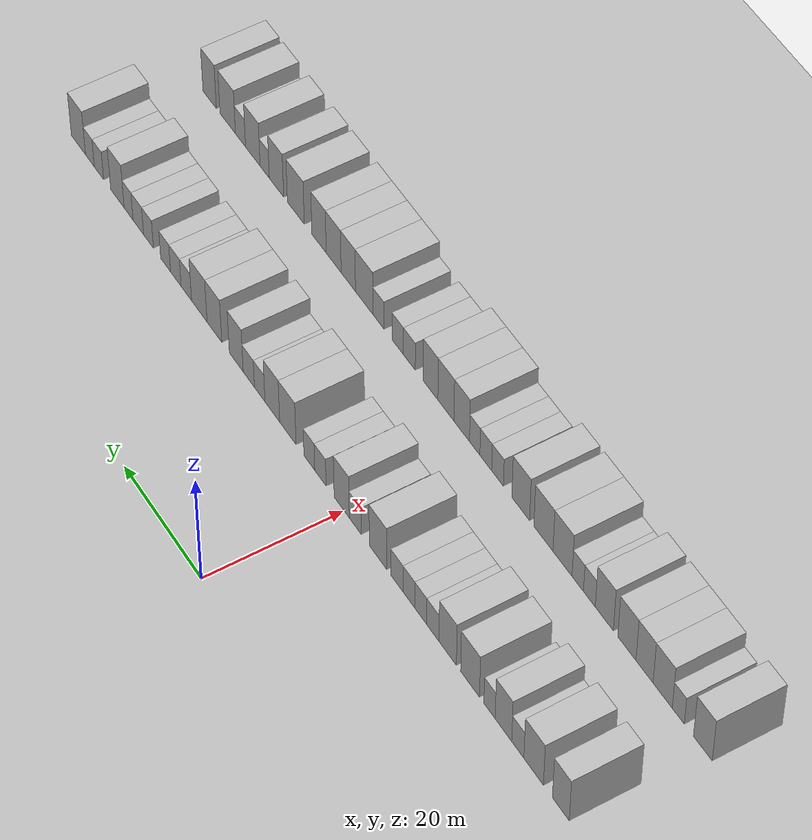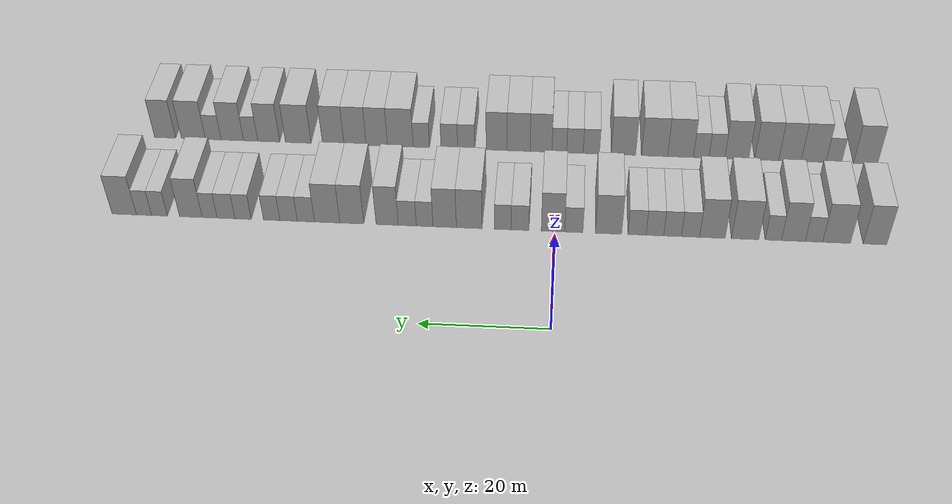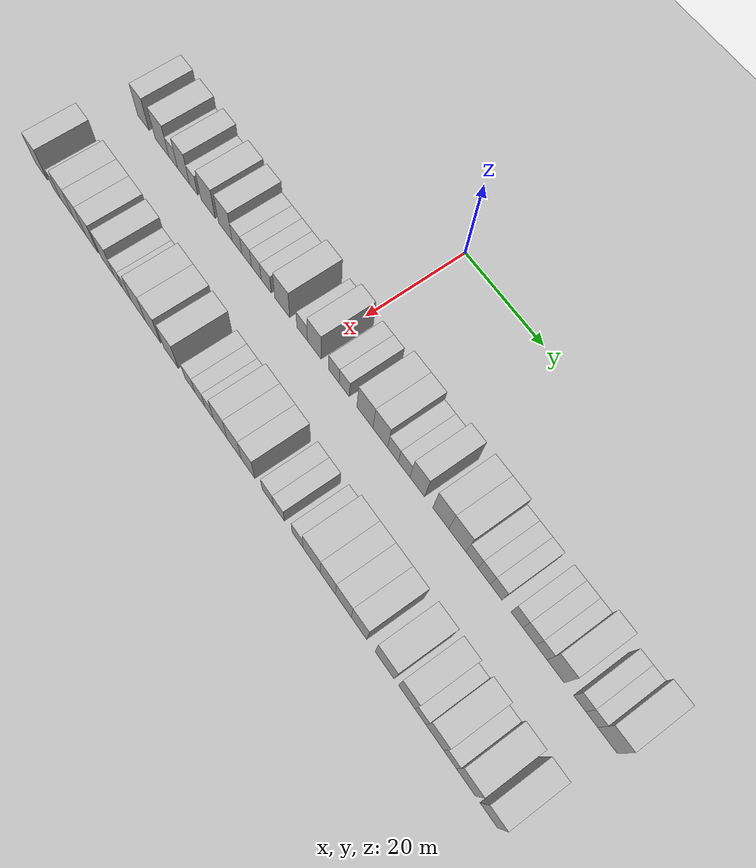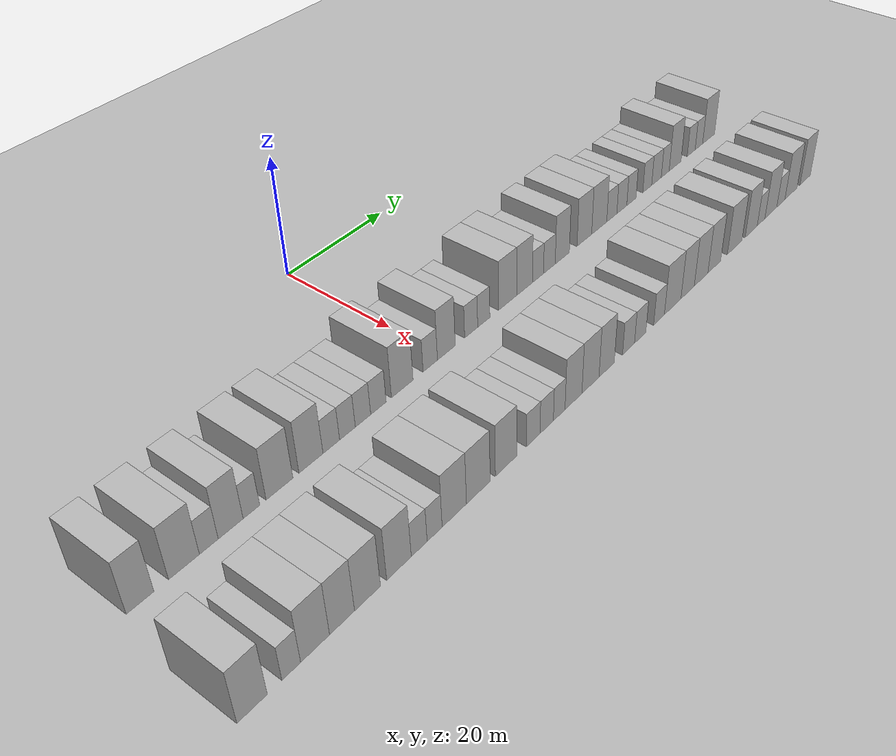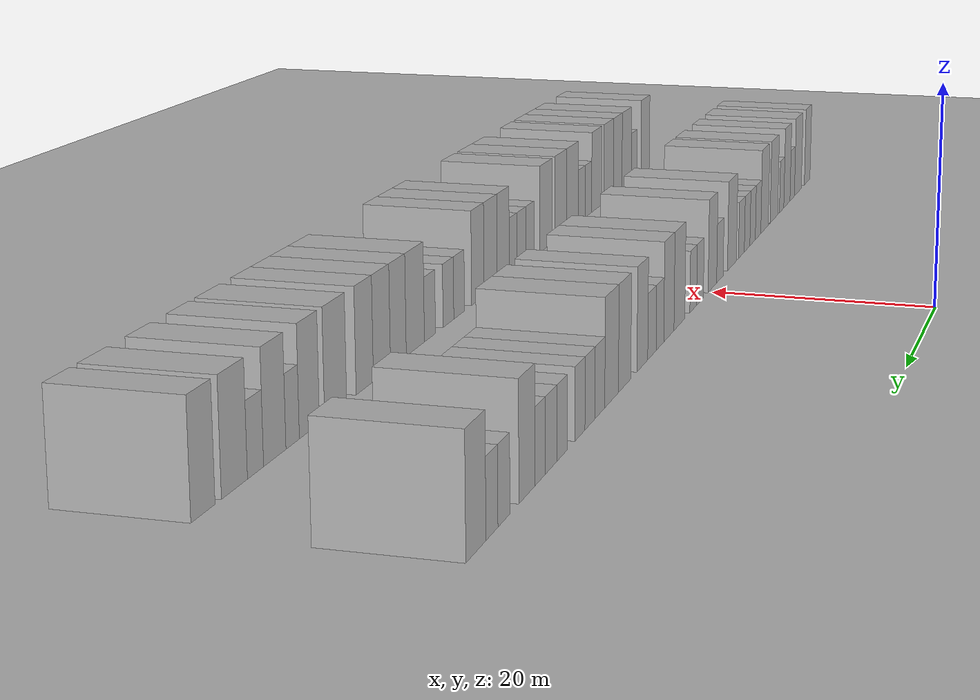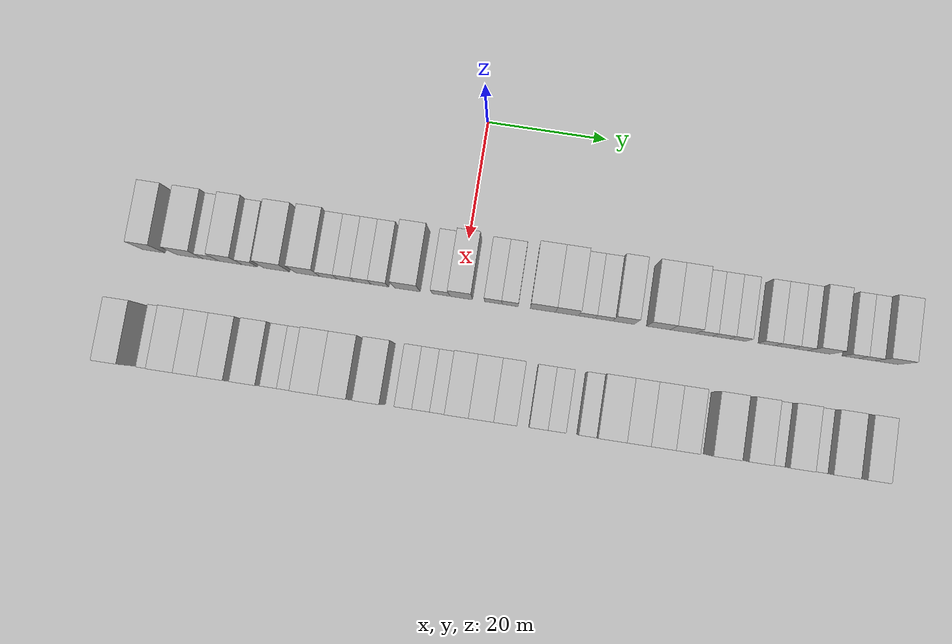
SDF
<sdf version="1.6">
 <world name="default">
  <include><name>ground_plane_1</name><uri>model://HANNAS_ground_plane</uri></include>
  <include>
   <name>ground_plane_2</name>
   <uri>model://HANNAS_ground_plane</uri>
   <pose>100 0 0  0 0 0</pose>
  </include>
  <model name="building_29">
   <static>1</static>
   <pose>25.0000 -50.9365 0 0.000000 0.000000 0.000000</pose>
   <link name="link">
    <pose>0 0 4.50 0 0 0</pose>
    <collision name="collision"><geometry><box><size>10.0000 3.7242 9.0000</size></box></geometry></collision>
    <visual name="visual">
     <cast_shadows>0</cast_shadows>
     <geometry><box><size>10.0000 3.7242 9.0000</size></box></geometry>
     <material>
      <script>
       <uri>model://HANNAS_wall/materials/scripts</uri>
       <uri>model://HANNAS_wall/materials/textures</uri>
       <name>vrc/HANNAS_wall</name>
      </script>
     </material>
    </visual>
   </link>
  </model>
  <model name="building_30">
   <static>1</static>
   <pose>25.0000 -44.8834 0 0.000000 0.000000 0.000000</pose>
   <link name="link">
    <pose>0 0 4.50 0 0 0</pose>
    <collision name="collision"><geometry><box><size>10.0000 4.3821 9.0000</size></box></geometry></collision>
    <visual name="visual">
     <cast_shadows>0</cast_shadows>
     <geometry><box><size>10.0000 4.3821 9.0000</size></box></geometry>
     <material>
      <script>
       <uri>model://HANNAS_wall/materials/scripts</uri>
       <uri>model://HANNAS_wall/materials/textures</uri>
       <name>vrc/HANNAS_wall</name>
      </script>
     </material>
    </visual>
   </link>
  </model>
  <model name="building_31">
   <static>1</static>
   <pose>25.0000 -41.3142 0 0.000000 0.000000 0.000000</pose>
   <link name="link">
    <pose>0 0 3.00 0 0 0</pose>
    <collision name="collision"><geometry><box><size>10.0000 2.7561 6.0000</size></box></geometry></collision>
    <visual name="visual">
     <cast_shadows>0</cast_shadows>
     <geometry><box><size>10.0000 2.7561 6.0000</size></box></geometry>
     <material>
      <script>
       <uri>model://HANNAS_wall/materials/scripts</uri>
       <uri>model://HANNAS_wall/materials/textures</uri>
       <name>vrc/HANNAS_wall</name>
      </script>
     </material>
    </visual>
   </link>
  </model>
  <model name="building_32">
   <static>1</static>
   <pose>25.0000 -38.0559 0 0.000000 0.000000 0.000000</pose>
   <link name="link">
    <pose>0 0 4.50 0 0 0</pose>
    <collision name="collision"><geometry><box><size>10.0000 3.7605 9.0000</size></box></geometry></collision>
    <visual name="visual">
     <cast_shadows>0</cast_shadows>
     <geometry><box><size>10.0000 3.7605 9.0000</size></box></geometry>
     <material>
      <script>
       <uri>model://HANNAS_wall/materials/scripts</uri>
       <uri>model://HANNAS_wall/materials/textures</uri>
       <name>vrc/HANNAS_wall</name>
      </script>
     </material>
    </visual>
   </link>
  </model>
  <model name="building_33">
   <static>1</static>
   <pose>25.0000 -34.8856 0 0.000000 0.000000 0.000000</pose>
   <link name="link">
    <pose>0 0 3.00 0 0 0</pose>
    <collision name="collision"><geometry><box><size>10.0000 2.5803 6.0000</size></box></geometry></collision>
    <visual name="visual">
     <cast_shadows>0</cast_shadows>
     <geometry><box><size>10.0000 2.5803 6.0000</size></box></geometry>
     <material>
      <script>
       <uri>model://HANNAS_wall/materials/scripts</uri>
       <uri>model://HANNAS_wall/materials/textures</uri>
       <name>vrc/HANNAS_wall</name>
      </script>
     </material>
    </visual>
   </link>
  </model>
  <model name="building_34">
   <static>1</static>
   <pose>25.0000 -30.4184 0 0.000000 0.000000 0.000000</pose>
   <link name="link">
    <pose>0 0 4.50 0 0 0</pose>
    <collision name="collision"><geometry><box><size>10.0000 4.3540 9.0000</size></box></geometry></collision>
    <visual name="visual">
     <cast_shadows>0</cast_shadows>
     <geometry><box><size>10.0000 4.3540 9.0000</size></box></geometry>
     <material>
      <script>
       <uri>model://HANNAS_wall/materials/scripts</uri>
       <uri>model://HANNAS_wall/materials/textures</uri>
       <name>vrc/HANNAS_wall</name>
      </script>
     </material>
    </visual>
   </link>
  </model>
  <model name="building_35">
   <static>1</static>
   <pose>25.0000 -25.2072 0 0.000000 0.000000 0.000000</pose>
   <link name="link">
    <pose>0 0 4.50 0 0 0</pose>
    <collision name="collision"><geometry><box><size>10.0000 4.0686 9.0000</size></box></geometry></collision>
    <visual name="visual">
     <cast_shadows>0</cast_shadows>
     <geometry><box><size>10.0000 4.0686 9.0000</size></box></geometry>
     <material>
      <script>
       <uri>model://HANNAS_wall/materials/scripts</uri>
       <uri>model://HANNAS_wall/materials/textures</uri>
       <name>vrc/HANNAS_wall</name>
      </script>
     </material>
    </visual>
   </link>
  </model>
  <model name="building_36">
   <static>1</static>
   <pose>25.0000 -21.7188 0 0.000000 0.000000 0.000000</pose>
   <link name="link">
    <pose>0 0 3.00 0 0 0</pose>
    <collision name="collision"><geometry><box><size>10.0000 2.9082 6.0000</size></box></geometry></collision>
    <visual name="visual">
     <cast_shadows>0</cast_shadows>
     <geometry><box><size>10.0000 2.9082 6.0000</size></box></geometry>
     <material>
      <script>
       <uri>model://HANNAS_wall/materials/scripts</uri>
       <uri>model://HANNAS_wall/materials/textures</uri>
       <name>vrc/HANNAS_wall</name>
      </script>
     </material>
    </visual>
   </link>
  </model>
  <model name="building_37">
   <static>1</static>
   <pose>25.0000 -18.8592 0 0.000000 0.000000 0.000000</pose>
   <link name="link">
    <pose>0 0 3.00 0 0 0</pose>
    <collision name="collision"><geometry><box><size>10.0000 2.8110 6.0000</size></box></geometry></collision>
    <visual name="visual">
     <cast_shadows>0</cast_shadows>
     <geometry><box><size>10.0000 2.8110 6.0000</size></box></geometry>
     <material>
      <script>
       <uri>model://HANNAS_wall/materials/scripts</uri>
       <uri>model://HANNAS_wall/materials/textures</uri>
       <name>vrc/HANNAS_wall</name>
      </script>
     </material>
    </visual>
   </link>
  </model>
  <model name="building_38">
   <static>1</static>
   <pose>25.0000 -16.0442 0 0.000000 0.000000 0.000000</pose>
   <link name="link">
    <pose>0 0 3.00 0 0 0</pose>
    <collision name="collision"><geometry><box><size>10.0000 2.8189 6.0000</size></box></geometry></collision>
    <visual name="visual">
     <cast_shadows>0</cast_shadows>
     <geometry><box><size>10.0000 2.8189 6.0000</size></box></geometry>
     <material>
      <script>
       <uri>model://HANNAS_wall/materials/scripts</uri>
       <uri>model://HANNAS_wall/materials/textures</uri>
       <name>vrc/HANNAS_wall</name>
      </script>
     </material>
    </visual>
   </link>
  </model>
  <model name="building_39">
   <static>1</static>
   <pose>25.0000 -13.1848 0 0.000000 0.000000 0.000000</pose>
   <link name="link">
    <pose>0 0 3.00 0 0 0</pose>
    <collision name="collision"><geometry><box><size>10.0000 2.9000 6.0000</size></box></geometry></collision>
    <visual name="visual">
     <cast_shadows>0</cast_shadows>
     <geometry><box><size>10.0000 2.9000 6.0000</size></box></geometry>
     <material>
      <script>
       <uri>model://HANNAS_wall/materials/scripts</uri>
       <uri>model://HANNAS_wall/materials/textures</uri>
       <name>vrc/HANNAS_wall</name>
      </script>
     </material>
    </visual>
   </link>
  </model>
  <model name="building_40">
   <static>1</static>
   <pose>25.0000 -8.6283 0 0.000000 0.000000 0.000000</pose>
   <link name="link">
    <pose>0 0 4.50 0 0 0</pose>
    <collision name="collision"><geometry><box><size>10.0000 4.2129 9.0000</size></box></geometry></collision>
    <visual name="visual">
     <cast_shadows>0</cast_shadows>
     <geometry><box><size>10.0000 4.2129 9.0000</size></box></geometry>
     <material>
      <script>
       <uri>model://HANNAS_wall/materials/scripts</uri>
       <uri>model://HANNAS_wall/materials/textures</uri>
       <name>vrc/HANNAS_wall</name>
      </script>
     </material>
    </visual>
   </link>
  </model>
  <model name="building_41">
   <static>1</static>
   <pose>25.0000 -3.0565 0 0.000000 0.000000 0.000000</pose>
   <link name="link">
    <pose>0 0 3.00 0 0 0</pose>
    <collision name="collision"><geometry><box><size>10.0000 2.9308 6.0000</size></box></geometry></collision>
    <visual name="visual">
     <cast_shadows>0</cast_shadows>
     <geometry><box><size>10.0000 2.9308 6.0000</size></box></geometry>
     <material>
      <script>
       <uri>model://HANNAS_wall/materials/scripts</uri>
       <uri>model://HANNAS_wall/materials/textures</uri>
       <name>vrc/HANNAS_wall</name>
      </script>
     </material>
    </visual>
   </link>
  </model>
  <model name="building_42">
   <static>1</static>
   <pose>25.0000 0.2762 0 0.000000 0.000000 0.000000</pose>
   <link name="link">
    <pose>0 0 4.50 0 0 0</pose>
    <collision name="collision"><geometry><box><size>10.0000 3.7345 9.0000</size></box></geometry></collision>
    <visual name="visual">
     <cast_shadows>0</cast_shadows>
     <geometry><box><size>10.0000 3.7345 9.0000</size></box></geometry>
     <material>
      <script>
       <uri>model://HANNAS_wall/materials/scripts</uri>
       <uri>model://HANNAS_wall/materials/textures</uri>
       <name>vrc/HANNAS_wall</name>
      </script>
     </material>
    </visual>
   </link>
  </model>
  <model name="building_43">
   <static>1</static>
   <pose>25.0000 5.5647 0 0.000000 0.000000 0.000000</pose>
   <link name="link">
    <pose>0 0 3.00 0 0 0</pose>
    <collision name="collision"><geometry><box><size>10.0000 2.8424 6.0000</size></box></geometry></collision>
    <visual name="visual">
     <cast_shadows>0</cast_shadows>
     <geometry><box><size>10.0000 2.8424 6.0000</size></box></geometry>
     <material>
      <script>
       <uri>model://HANNAS_wall/materials/scripts</uri>
       <uri>model://HANNAS_wall/materials/textures</uri>
       <name>vrc/HANNAS_wall</name>
      </script>
     </material>
    </visual>
   </link>
  </model>
  <model name="building_44">
   <static>1</static>
   <pose>25.0000 8.3431 0 0.000000 0.000000 0.000000</pose>
   <link name="link">
    <pose>0 0 3.00 0 0 0</pose>
    <collision name="collision"><geometry><box><size>10.0000 2.7145 6.0000</size></box></geometry></collision>
    <visual name="visual">
     <cast_shadows>0</cast_shadows>
     <geometry><box><size>10.0000 2.7145 6.0000</size></box></geometry>
     <material>
      <script>
       <uri>model://HANNAS_wall/materials/scripts</uri>
       <uri>model://HANNAS_wall/materials/textures</uri>
       <name>vrc/HANNAS_wall</name>
      </script>
     </material>
    </visual>
   </link>
  </model>
  <model name="building_45">
   <static>1</static>
   <pose>25.0000 13.7788 0 0.000000 0.000000 0.000000</pose>
   <link name="link">
    <pose>0 0 4.50 0 0 0</pose>
    <collision name="collision"><geometry><box><size>10.0000 4.1567 9.0000</size></box></geometry></collision>
    <visual name="visual">
     <cast_shadows>0</cast_shadows>
     <geometry><box><size>10.0000 4.1567 9.0000</size></box></geometry>
     <material>
      <script>
       <uri>model://HANNAS_wall/materials/scripts</uri>
       <uri>model://HANNAS_wall/materials/textures</uri>
       <name>vrc/HANNAS_wall</name>
      </script>
     </material>
    </visual>
   </link>
  </model>
  <model name="building_46">
   <static>1</static>
   <pose>25.0000 17.7492 0 0.000000 0.000000 0.000000</pose>
   <link name="link">
    <pose>0 0 4.50 0 0 0</pose>
    <collision name="collision"><geometry><box><size>10.0000 3.7842 9.0000</size></box></geometry></collision>
    <visual name="visual">
     <cast_shadows>0</cast_shadows>
     <geometry><box><size>10.0000 3.7842 9.0000</size></box></geometry>
     <material>
      <script>
       <uri>model://HANNAS_wall/materials/scripts</uri>
       <uri>model://HANNAS_wall/materials/textures</uri>
       <name>vrc/HANNAS_wall</name>
      </script>
     </material>
    </visual>
   </link>
  </model>
  <model name="building_47">
   <static>1</static>
   <pose>25.0000 20.9983 0 0.000000 0.000000 0.000000</pose>
   <link name="link">
    <pose>0 0 3.00 0 0 0</pose>
    <collision name="collision"><geometry><box><size>10.0000 2.7140 6.0000</size></box></geometry></collision>
    <visual name="visual">
     <cast_shadows>0</cast_shadows>
     <geometry><box><size>10.0000 2.7140 6.0000</size></box></geometry>
     <material>
      <script>
       <uri>model://HANNAS_wall/materials/scripts</uri>
       <uri>model://HANNAS_wall/materials/textures</uri>
       <name>vrc/HANNAS_wall</name>
      </script>
     </material>
    </visual>
   </link>
  </model>
  <model name="building_48">
   <static>1</static>
   <pose>25.0000 23.8133 0 0.000000 0.000000 0.000000</pose>
   <link name="link">
    <pose>0 0 3.00 0 0 0</pose>
    <collision name="collision"><geometry><box><size>10.0000 2.9159 6.0000</size></box></geometry></collision>
    <visual name="visual">
     <cast_shadows>0</cast_shadows>
     <geometry><box><size>10.0000 2.9159 6.0000</size></box></geometry>
     <material>
      <script>
       <uri>model://HANNAS_wall/materials/scripts</uri>
       <uri>model://HANNAS_wall/materials/textures</uri>
       <name>vrc/HANNAS_wall</name>
      </script>
     </material>
    </visual>
   </link>
  </model>
  <model name="building_49">
   <static>1</static>
   <pose>25.0000 27.0714 0 0.000000 0.000000 0.000000</pose>
   <link name="link">
    <pose>0 0 4.50 0 0 0</pose>
    <collision name="collision"><geometry><box><size>10.0000 3.6002 9.0000</size></box></geometry></collision>
    <visual name="visual">
     <cast_shadows>0</cast_shadows>
     <geometry><box><size>10.0000 3.6002 9.0000</size></box></geometry>
     <material>
      <script>
       <uri>model://HANNAS_wall/materials/scripts</uri>
       <uri>model://HANNAS_wall/materials/textures</uri>
       <name>vrc/HANNAS_wall</name>
      </script>
     </material>
    </visual>
   </link>
  </model>
  <model name="building_50">
   <static>1</static>
   <pose>25.0000 32.8198 0 0.000000 0.000000 0.000000</pose>
   <link name="link">
    <pose>0 0 4.50 0 0 0</pose>
    <collision name="collision"><geometry><box><size>10.0000 3.8966 9.0000</size></box></geometry></collision>
    <visual name="visual">
     <cast_shadows>0</cast_shadows>
     <geometry><box><size>10.0000 3.8966 9.0000</size></box></geometry>
     <material>
      <script>
       <uri>model://HANNAS_wall/materials/scripts</uri>
       <uri>model://HANNAS_wall/materials/textures</uri>
       <name>vrc/HANNAS_wall</name>
      </script>
     </material>
    </visual>
   </link>
  </model>
  <model name="building_51">
   <static>1</static>
   <pose>25.0000 36.8299 0 0.000000 0.000000 0.000000</pose>
   <link name="link">
    <pose>0 0 4.50 0 0 0</pose>
    <collision name="collision"><geometry><box><size>10.0000 4.1238 9.0000</size></box></geometry></collision>
    <visual name="visual">
     <cast_shadows>0</cast_shadows>
     <geometry><box><size>10.0000 4.1238 9.0000</size></box></geometry>
     <material>
      <script>
       <uri>model://HANNAS_wall/materials/scripts</uri>
       <uri>model://HANNAS_wall/materials/textures</uri>
       <name>vrc/HANNAS_wall</name>
      </script>
     </material>
    </visual>
   </link>
  </model>
  <model name="building_52">
   <static>1</static>
   <pose>25.0000 40.3055 0 0.000000 0.000000 0.000000</pose>
   <link name="link">
    <pose>0 0 3.00 0 0 0</pose>
    <collision name="collision"><geometry><box><size>10.0000 2.8273 6.0000</size></box></geometry></collision>
    <visual name="visual">
     <cast_shadows>0</cast_shadows>
     <geometry><box><size>10.0000 2.8273 6.0000</size></box></geometry>
     <material>
      <script>
       <uri>model://HANNAS_wall/materials/scripts</uri>
       <uri>model://HANNAS_wall/materials/textures</uri>
       <name>vrc/HANNAS_wall</name>
      </script>
     </material>
    </visual>
   </link>
  </model>
  <model name="building_53">
   <static>1</static>
   <pose>25.0000 43.1395 0 0.000000 0.000000 0.000000</pose>
   <link name="link">
    <pose>0 0 3.00 0 0 0</pose>
    <collision name="collision"><geometry><box><size>10.0000 2.8408 6.0000</size></box></geometry></collision>
    <visual name="visual">
     <cast_shadows>0</cast_shadows>
     <geometry><box><size>10.0000 2.8408 6.0000</size></box></geometry>
     <material>
      <script>
       <uri>model://HANNAS_wall/materials/scripts</uri>
       <uri>model://HANNAS_wall/materials/textures</uri>
       <name>vrc/HANNAS_wall</name>
      </script>
     </material>
    </visual>
   </link>
  </model>
  <model name="building_54">
   <static>1</static>
   <pose>25.0000 45.9020 0 0.000000 0.000000 0.000000</pose>
   <link name="link">
    <pose>0 0 3.00 0 0 0</pose>
    <collision name="collision"><geometry><box><size>10.0000 2.6841 6.0000</size></box></geometry></collision>
    <visual name="visual">
     <cast_shadows>0</cast_shadows>
     <geometry><box><size>10.0000 2.6841 6.0000</size></box></geometry>
     <material>
      <script>
       <uri>model://HANNAS_wall/materials/scripts</uri>
       <uri>model://HANNAS_wall/materials/textures</uri>
       <name>vrc/HANNAS_wall</name>
      </script>
     </material>
    </visual>
   </link>
  </model>
  <model name="building_55">
   <static>1</static>
   <pose>25.0000 50.5826 0 0.000000 0.000000 0.000000</pose>
   <link name="link">
    <pose>0 0 3.00 0 0 0</pose>
    <collision name="collision"><geometry><box><size>10.0000 2.6772 6.0000</size></box></geometry></collision>
    <visual name="visual">
     <cast_shadows>0</cast_shadows>
     <geometry><box><size>10.0000 2.6772 6.0000</size></box></geometry>
     <material>
      <script>
       <uri>model://HANNAS_wall/materials/scripts</uri>
       <uri>model://HANNAS_wall/materials/textures</uri>
       <name>vrc/HANNAS_wall</name>
      </script>
     </material>
    </visual>
   </link>
  </model>
  <model name="building_56">
   <static>1</static>
   <pose>25.0000 53.3830 0 0.000000 0.000000 0.000000</pose>
   <link name="link">
    <pose>0 0 3.00 0 0 0</pose>
    <collision name="collision"><geometry><box><size>10.0000 2.9236 6.0000</size></box></geometry></collision>
    <visual name="visual">
     <cast_shadows>0</cast_shadows>
     <geometry><box><size>10.0000 2.9236 6.0000</size></box></geometry>
     <material>
      <script>
       <uri>model://HANNAS_wall/materials/scripts</uri>
       <uri>model://HANNAS_wall/materials/textures</uri>
       <name>vrc/HANNAS_wall</name>
      </script>
     </material>
    </visual>
   </link>
  </model>
  <model name="building_57">
   <static>1</static>
   <pose>25.0000 56.0704 0 0.000000 0.000000 0.000000</pose>
   <link name="link">
    <pose>0 0 3.00 0 0 0</pose>
    <collision name="collision"><geometry><box><size>10.0000 2.4512 6.0000</size></box></geometry></collision>
    <visual name="visual">
     <cast_shadows>0</cast_shadows>
     <geometry><box><size>10.0000 2.4512 6.0000</size></box></geometry>
     <material>
      <script>
       <uri>model://HANNAS_wall/materials/scripts</uri>
       <uri>model://HANNAS_wall/materials/textures</uri>
       <name>vrc/HANNAS_wall</name>
      </script>
     </material>
    </visual>
   </link>
  </model>
  <model name="building_58">
   <static>1</static>
   <pose>25.0000 59.1703 0 0.000000 0.000000 0.000000</pose>
   <link name="link">
    <pose>0 0 4.50 0 0 0</pose>
    <collision name="collision"><geometry><box><size>10.0000 3.7488 9.0000</size></box></geometry></collision>
    <visual name="visual">
     <cast_shadows>0</cast_shadows>
     <geometry><box><size>10.0000 3.7488 9.0000</size></box></geometry>
     <material>
      <script>
       <uri>model://HANNAS_wall/materials/scripts</uri>
       <uri>model://HANNAS_wall/materials/textures</uri>
       <name>vrc/HANNAS_wall</name>
      </script>
     </material>
    </visual>
   </link>
  </model>
  <model name="building_59">
   <static>1</static>
   <pose>25.0000 64.3447 0 0.000000 0.000000 0.000000</pose>
   <link name="link">
    <pose>0 0 3.00 0 0 0</pose>
    <collision name="collision"><geometry><box><size>10.0000 2.6000 6.0000</size></box></geometry></collision>
    <visual name="visual">
     <cast_shadows>0</cast_shadows>
     <geometry><box><size>10.0000 2.6000 6.0000</size></box></geometry>
     <material>
      <script>
       <uri>model://HANNAS_wall/materials/scripts</uri>
       <uri>model://HANNAS_wall/materials/textures</uri>
       <name>vrc/HANNAS_wall</name>
      </script>
     </material>
    </visual>
   </link>
  </model>
  <model name="building_60">
   <static>1</static>
   <pose>25.0000 66.8948 0 0.000000 0.000000 0.000000</pose>
   <link name="link">
    <pose>0 0 3.00 0 0 0</pose>
    <collision name="collision"><geometry><box><size>10.0000 2.5003 6.0000</size></box></geometry></collision>
    <visual name="visual">
     <cast_shadows>0</cast_shadows>
     <geometry><box><size>10.0000 2.5003 6.0000</size></box></geometry>
     <material>
      <script>
       <uri>model://HANNAS_wall/materials/scripts</uri>
       <uri>model://HANNAS_wall/materials/textures</uri>
       <name>vrc/HANNAS_wall</name>
      </script>
     </material>
    </visual>
   </link>
  </model>
  <model name="building_61">
   <static>1</static>
   <pose>25.0000 70.1582 0 0.000000 0.000000 0.000000</pose>
   <link name="link">
    <pose>0 0 4.50 0 0 0</pose>
    <collision name="collision"><geometry><box><size>10.0000 4.0265 9.0000</size></box></geometry></collision>
    <visual name="visual">
     <cast_shadows>0</cast_shadows>
     <geometry><box><size>10.0000 4.0265 9.0000</size></box></geometry>
     <material>
      <script>
       <uri>model://HANNAS_wall/materials/scripts</uri>
       <uri>model://HANNAS_wall/materials/textures</uri>
       <name>vrc/HANNAS_wall</name>
      </script>
     </material>
    </visual>
   </link>
  </model>
  <model name="building_131">
   <static>1</static>
   <pose>44.0000 -52.3971 0 0.000000 0.000000 0.000000</pose>
   <link name="link">
    <pose>0 0 4.50 0 0 0</pose>
    <collision name="collision"><geometry><box><size>10.0000 4.0538 9.0000</size></box></geometry></collision>
    <visual name="visual">
     <cast_shadows>0</cast_shadows>
     <geometry><box><size>10.0000 4.0538 9.0000</size></box></geometry>
     <material>
      <script>
       <uri>model://HANNAS_wall/materials/scripts</uri>
       <uri>model://HANNAS_wall/materials/textures</uri>
       <name>vrc/HANNAS_wall</name>
      </script>
     </material>
    </visual>
   </link>
  </model>
  <model name="building_132">
   <static>1</static>
   <pose>44.0000 -47.0540 0 0.000000 0.000000 0.000000</pose>
   <link name="link">
    <pose>0 0 3.00 0 0 0</pose>
    <collision name="collision"><geometry><box><size>10.0000 2.6324 6.0000</size></box></geometry></collision>
    <visual name="visual">
     <cast_shadows>0</cast_shadows>
     <geometry><box><size>10.0000 2.6324 6.0000</size></box></geometry>
     <material>
      <script>
       <uri>model://HANNAS_wall/materials/scripts</uri>
       <uri>model://HANNAS_wall/materials/textures</uri>
       <name>vrc/HANNAS_wall</name>
      </script>
     </material>
    </visual>
   </link>
  </model>
  <model name="building_133">
   <static>1</static>
   <pose>44.0000 -43.6304 0 0.000000 0.000000 0.000000</pose>
   <link name="link">
    <pose>0 0 4.50 0 0 0</pose>
    <collision name="collision"><geometry><box><size>10.0000 4.2150 9.0000</size></box></geometry></collision>
    <visual name="visual">
     <cast_shadows>0</cast_shadows>
     <geometry><box><size>10.0000 4.2150 9.0000</size></box></geometry>
     <material>
      <script>
       <uri>model://HANNAS_wall/materials/scripts</uri>
       <uri>model://HANNAS_wall/materials/textures</uri>
       <name>vrc/HANNAS_wall</name>
      </script>
     </material>
    </visual>
   </link>
  </model>
  <model name="building_134">
   <static>1</static>
   <pose>44.0000 -39.6261 0 0.000000 0.000000 0.000000</pose>
   <link name="link">
    <pose>0 0 4.50 0 0 0</pose>
    <collision name="collision"><geometry><box><size>10.0000 3.7937 9.0000</size></box></geometry></collision>
    <visual name="visual">
     <cast_shadows>0</cast_shadows>
     <geometry><box><size>10.0000 3.7937 9.0000</size></box></geometry>
     <material>
      <script>
       <uri>model://HANNAS_wall/materials/scripts</uri>
       <uri>model://HANNAS_wall/materials/textures</uri>
       <name>vrc/HANNAS_wall</name>
      </script>
     </material>
    </visual>
   </link>
  </model>
  <model name="building_135">
   <static>1</static>
   <pose>44.0000 -35.6895 0 0.000000 0.000000 0.000000</pose>
   <link name="link">
    <pose>0 0 4.50 0 0 0</pose>
    <collision name="collision"><geometry><box><size>10.0000 4.0794 9.0000</size></box></geometry></collision>
    <visual name="visual">
     <cast_shadows>0</cast_shadows>
     <geometry><box><size>10.0000 4.0794 9.0000</size></box></geometry>
     <material>
      <script>
       <uri>model://HANNAS_wall/materials/scripts</uri>
       <uri>model://HANNAS_wall/materials/textures</uri>
       <name>vrc/HANNAS_wall</name>
      </script>
     </material>
    </visual>
   </link>
  </model>
  <model name="building_136">
   <static>1</static>
   <pose>44.0000 -30.6126 0 0.000000 0.000000 0.000000</pose>
   <link name="link">
    <pose>0 0 4.50 0 0 0</pose>
    <collision name="collision"><geometry><box><size>10.0000 4.0744 9.0000</size></box></geometry></collision>
    <visual name="visual">
     <cast_shadows>0</cast_shadows>
     <geometry><box><size>10.0000 4.0744 9.0000</size></box></geometry>
     <material>
      <script>
       <uri>model://HANNAS_wall/materials/scripts</uri>
       <uri>model://HANNAS_wall/materials/textures</uri>
       <name>vrc/HANNAS_wall</name>
      </script>
     </material>
    </visual>
   </link>
  </model>
  <model name="building_137">
   <static>1</static>
   <pose>44.0000 -27.2211 0 0.000000 0.000000 0.000000</pose>
   <link name="link">
    <pose>0 0 3.00 0 0 0</pose>
    <collision name="collision"><geometry><box><size>10.0000 2.7085 6.0000</size></box></geometry></collision>
    <visual name="visual">
     <cast_shadows>0</cast_shadows>
     <geometry><box><size>10.0000 2.7085 6.0000</size></box></geometry>
     <material>
      <script>
       <uri>model://HANNAS_wall/materials/scripts</uri>
       <uri>model://HANNAS_wall/materials/textures</uri>
       <name>vrc/HANNAS_wall</name>
      </script>
     </material>
    </visual>
   </link>
  </model>
  <model name="building_138">
   <static>1</static>
   <pose>44.0000 -24.5541 0 0.000000 0.000000 0.000000</pose>
   <link name="link">
    <pose>0 0 3.00 0 0 0</pose>
    <collision name="collision"><geometry><box><size>10.0000 2.6256 6.0000</size></box></geometry></collision>
    <visual name="visual">
     <cast_shadows>0</cast_shadows>
     <geometry><box><size>10.0000 2.6256 6.0000</size></box></geometry>
     <material>
      <script>
       <uri>model://HANNAS_wall/materials/scripts</uri>
       <uri>model://HANNAS_wall/materials/textures</uri>
       <name>vrc/HANNAS_wall</name>
      </script>
     </material>
    </visual>
   </link>
  </model>
  <model name="building_139">
   <static>1</static>
   <pose>44.0000 -21.0375 0 0.000000 0.000000 0.000000</pose>
   <link name="link">
    <pose>0 0 4.50 0 0 0</pose>
    <collision name="collision"><geometry><box><size>10.0000 4.4076 9.0000</size></box></geometry></collision>
    <visual name="visual">
     <cast_shadows>0</cast_shadows>
     <geometry><box><size>10.0000 4.4076 9.0000</size></box></geometry>
     <material>
      <script>
       <uri>model://HANNAS_wall/materials/scripts</uri>
       <uri>model://HANNAS_wall/materials/textures</uri>
       <name>vrc/HANNAS_wall</name>
      </script>
     </material>
    </visual>
   </link>
  </model>
  <model name="building_140">
   <static>1</static>
   <pose>44.0000 -16.6037 0 0.000000 0.000000 0.000000</pose>
   <link name="link">
    <pose>0 0 4.50 0 0 0</pose>
    <collision name="collision"><geometry><box><size>10.0000 4.4601 9.0000</size></box></geometry></collision>
    <visual name="visual">
     <cast_shadows>0</cast_shadows>
     <geometry><box><size>10.0000 4.4601 9.0000</size></box></geometry>
     <material>
      <script>
       <uri>model://HANNAS_wall/materials/scripts</uri>
       <uri>model://HANNAS_wall/materials/textures</uri>
       <name>vrc/HANNAS_wall</name>
      </script>
     </material>
    </visual>
   </link>
  </model>
  <model name="building_141">
   <static>1</static>
   <pose>44.0000 -11.2767 0 0.000000 0.000000 0.000000</pose>
   <link name="link">
    <pose>0 0 4.50 0 0 0</pose>
    <collision name="collision"><geometry><box><size>10.0000 4.1938 9.0000</size></box></geometry></collision>
    <visual name="visual">
     <cast_shadows>0</cast_shadows>
     <geometry><box><size>10.0000 4.1938 9.0000</size></box></geometry>
     <material>
      <script>
       <uri>model://HANNAS_wall/materials/scripts</uri>
       <uri>model://HANNAS_wall/materials/textures</uri>
       <name>vrc/HANNAS_wall</name>
      </script>
     </material>
    </visual>
   </link>
  </model>
  <model name="building_142">
   <static>1</static>
   <pose>44.0000 -5.7790 0 0.000000 0.000000 0.000000</pose>
   <link name="link">
    <pose>0 0 3.00 0 0 0</pose>
    <collision name="collision"><geometry><box><size>10.0000 2.8016 6.0000</size></box></geometry></collision>
    <visual name="visual">
     <cast_shadows>0</cast_shadows>
     <geometry><box><size>10.0000 2.8016 6.0000</size></box></geometry>
     <material>
      <script>
       <uri>model://HANNAS_wall/materials/scripts</uri>
       <uri>model://HANNAS_wall/materials/textures</uri>
       <name>vrc/HANNAS_wall</name>
      </script>
     </material>
    </visual>
   </link>
  </model>
  <model name="building_143">
   <static>1</static>
   <pose>44.0000 -2.9586 0 0.000000 0.000000 0.000000</pose>
   <link name="link">
    <pose>0 0 3.00 0 0 0</pose>
    <collision name="collision"><geometry><box><size>10.0000 2.8392 6.0000</size></box></geometry></collision>
    <visual name="visual">
     <cast_shadows>0</cast_shadows>
     <geometry><box><size>10.0000 2.8392 6.0000</size></box></geometry>
     <material>
      <script>
       <uri>model://HANNAS_wall/materials/scripts</uri>
       <uri>model://HANNAS_wall/materials/textures</uri>
       <name>vrc/HANNAS_wall</name>
      </script>
     </material>
    </visual>
   </link>
  </model>
  <model name="building_144">
   <static>1</static>
   <pose>44.0000 -0.2817 0 0.000000 0.000000 0.000000</pose>
   <link name="link">
    <pose>0 0 3.00 0 0 0</pose>
    <collision name="collision"><geometry><box><size>10.0000 2.5146 6.0000</size></box></geometry></collision>
    <visual name="visual">
     <cast_shadows>0</cast_shadows>
     <geometry><box><size>10.0000 2.5146 6.0000</size></box></geometry>
     <material>
      <script>
       <uri>model://HANNAS_wall/materials/scripts</uri>
       <uri>model://HANNAS_wall/materials/textures</uri>
       <name>vrc/HANNAS_wall</name>
      </script>
     </material>
    </visual>
   </link>
  </model>
  <model name="building_145">
   <static>1</static>
   <pose>44.0000 2.8568 0 0.000000 0.000000 0.000000</pose>
   <link name="link">
    <pose>0 0 4.50 0 0 0</pose>
    <collision name="collision"><geometry><box><size>10.0000 3.7625 9.0000</size></box></geometry></collision>
    <visual name="visual">
     <cast_shadows>0</cast_shadows>
     <geometry><box><size>10.0000 3.7625 9.0000</size></box></geometry>
     <material>
      <script>
       <uri>model://HANNAS_wall/materials/scripts</uri>
       <uri>model://HANNAS_wall/materials/textures</uri>
       <name>vrc/HANNAS_wall</name>
      </script>
     </material>
    </visual>
   </link>
  </model>
  <model name="building_146">
   <static>1</static>
   <pose>44.0000 6.7033 0 0.000000 0.000000 0.000000</pose>
   <link name="link">
    <pose>0 0 4.50 0 0 0</pose>
    <collision name="collision"><geometry><box><size>10.0000 3.9306 9.0000</size></box></geometry></collision>
    <visual name="visual">
     <cast_shadows>0</cast_shadows>
     <geometry><box><size>10.0000 3.9306 9.0000</size></box></geometry>
     <material>
      <script>
       <uri>model://HANNAS_wall/materials/scripts</uri>
       <uri>model://HANNAS_wall/materials/textures</uri>
       <name>vrc/HANNAS_wall</name>
      </script>
     </material>
    </visual>
   </link>
  </model>
  <model name="building_147">
   <static>1</static>
   <pose>44.0000 10.4769 0 0.000000 0.000000 0.000000</pose>
   <link name="link">
    <pose>0 0 4.50 0 0 0</pose>
    <collision name="collision"><geometry><box><size>10.0000 3.6166 9.0000</size></box></geometry></collision>
    <visual name="visual">
     <cast_shadows>0</cast_shadows>
     <geometry><box><size>10.0000 3.6166 9.0000</size></box></geometry>
     <material>
      <script>
       <uri>model://HANNAS_wall/materials/scripts</uri>
       <uri>model://HANNAS_wall/materials/textures</uri>
       <name>vrc/HANNAS_wall</name>
      </script>
     </material>
    </visual>
   </link>
  </model>
  <model name="building_148">
   <static>1</static>
   <pose>44.0000 15.7632 0 0.000000 0.000000 0.000000</pose>
   <link name="link">
    <pose>0 0 3.00 0 0 0</pose>
    <collision name="collision"><geometry><box><size>10.0000 2.9559 6.0000</size></box></geometry></collision>
    <visual name="visual">
     <cast_shadows>0</cast_shadows>
     <geometry><box><size>10.0000 2.9559 6.0000</size></box></geometry>
     <material>
      <script>
       <uri>model://HANNAS_wall/materials/scripts</uri>
       <uri>model://HANNAS_wall/materials/textures</uri>
       <name>vrc/HANNAS_wall</name>
      </script>
     </material>
    </visual>
   </link>
  </model>
  <model name="building_149">
   <static>1</static>
   <pose>44.0000 18.6743 0 0.000000 0.000000 0.000000</pose>
   <link name="link">
    <pose>0 0 3.00 0 0 0</pose>
    <collision name="collision"><geometry><box><size>10.0000 2.8663 6.0000</size></box></geometry></collision>
    <visual name="visual">
     <cast_shadows>0</cast_shadows>
     <geometry><box><size>10.0000 2.8663 6.0000</size></box></geometry>
     <material>
      <script>
       <uri>model://HANNAS_wall/materials/scripts</uri>
       <uri>model://HANNAS_wall/materials/textures</uri>
       <name>vrc/HANNAS_wall</name>
      </script>
     </material>
    </visual>
   </link>
  </model>
  <model name="building_150">
   <static>1</static>
   <pose>44.0000 23.5152 0 0.000000 0.000000 0.000000</pose>
   <link name="link">
    <pose>0 0 3.00 0 0 0</pose>
    <collision name="collision"><geometry><box><size>10.0000 2.8155 6.0000</size></box></geometry></collision>
    <visual name="visual">
     <cast_shadows>0</cast_shadows>
     <geometry><box><size>10.0000 2.8155 6.0000</size></box></geometry>
     <material>
      <script>
       <uri>model://HANNAS_wall/materials/scripts</uri>
       <uri>model://HANNAS_wall/materials/textures</uri>
       <name>vrc/HANNAS_wall</name>
      </script>
     </material>
    </visual>
   </link>
  </model>
  <model name="building_151">
   <static>1</static>
   <pose>44.0000 27.1546 0 0.000000 0.000000 0.000000</pose>
   <link name="link">
    <pose>0 0 4.50 0 0 0</pose>
    <collision name="collision"><geometry><box><size>10.0000 4.4633 9.0000</size></box></geometry></collision>
    <visual name="visual">
     <cast_shadows>0</cast_shadows>
     <geometry><box><size>10.0000 4.4633 9.0000</size></box></geometry>
     <material>
      <script>
       <uri>model://HANNAS_wall/materials/scripts</uri>
       <uri>model://HANNAS_wall/materials/textures</uri>
       <name>vrc/HANNAS_wall</name>
      </script>
     </material>
    </visual>
   </link>
  </model>
  <model name="building_152">
   <static>1</static>
   <pose>44.0000 31.2414 0 0.000000 0.000000 0.000000</pose>
   <link name="link">
    <pose>0 0 4.50 0 0 0</pose>
    <collision name="collision"><geometry><box><size>10.0000 3.7103 9.0000</size></box></geometry></collision>
    <visual name="visual">
     <cast_shadows>0</cast_shadows>
     <geometry><box><size>10.0000 3.7103 9.0000</size></box></geometry>
     <material>
      <script>
       <uri>model://HANNAS_wall/materials/scripts</uri>
       <uri>model://HANNAS_wall/materials/textures</uri>
       <name>vrc/HANNAS_wall</name>
      </script>
     </material>
    </visual>
   </link>
  </model>
  <model name="building_153">
   <static>1</static>
   <pose>44.0000 35.0331 0 0.000000 0.000000 0.000000</pose>
   <link name="link">
    <pose>0 0 4.50 0 0 0</pose>
    <collision name="collision"><geometry><box><size>10.0000 3.8731 9.0000</size></box></geometry></collision>
    <visual name="visual">
     <cast_shadows>0</cast_shadows>
     <geometry><box><size>10.0000 3.8731 9.0000</size></box></geometry>
     <material>
      <script>
       <uri>model://HANNAS_wall/materials/scripts</uri>
       <uri>model://HANNAS_wall/materials/textures</uri>
       <name>vrc/HANNAS_wall</name>
      </script>
     </material>
    </visual>
   </link>
  </model>
  <model name="building_154">
   <static>1</static>
   <pose>44.0000 38.8469 0 0.000000 0.000000 0.000000</pose>
   <link name="link">
    <pose>0 0 4.50 0 0 0</pose>
    <collision name="collision"><geometry><box><size>10.0000 3.7546 9.0000</size></box></geometry></collision>
    <visual name="visual">
     <cast_shadows>0</cast_shadows>
     <geometry><box><size>10.0000 3.7546 9.0000</size></box></geometry>
     <material>
      <script>
       <uri>model://HANNAS_wall/materials/scripts</uri>
       <uri>model://HANNAS_wall/materials/textures</uri>
       <name>vrc/HANNAS_wall</name>
      </script>
     </material>
    </visual>
   </link>
  </model>
  <model name="building_155">
   <static>1</static>
   <pose>44.0000 44.9632 0 0.000000 0.000000 0.000000</pose>
   <link name="link">
    <pose>0 0 4.50 0 0 0</pose>
    <collision name="collision"><geometry><box><size>10.0000 4.4780 9.0000</size></box></geometry></collision>
    <visual name="visual">
     <cast_shadows>0</cast_shadows>
     <geometry><box><size>10.0000 4.4780 9.0000</size></box></geometry>
     <material>
      <script>
       <uri>model://HANNAS_wall/materials/scripts</uri>
       <uri>model://HANNAS_wall/materials/textures</uri>
       <name>vrc/HANNAS_wall</name>
      </script>
     </material>
    </visual>
   </link>
  </model>
  <model name="building_156">
   <static>1</static>
   <pose>44.0000 50.1231 0 0.000000 0.000000 0.000000</pose>
   <link name="link">
    <pose>0 0 4.50 0 0 0</pose>
    <collision name="collision"><geometry><box><size>10.0000 3.8418 9.0000</size></box></geometry></collision>
    <visual name="visual">
     <cast_shadows>0</cast_shadows>
     <geometry><box><size>10.0000 3.8418 9.0000</size></box></geometry>
     <material>
      <script>
       <uri>model://HANNAS_wall/materials/scripts</uri>
       <uri>model://HANNAS_wall/materials/textures</uri>
       <name>vrc/HANNAS_wall</name>
      </script>
     </material>
    </visual>
   </link>
  </model>
  <model name="building_157">
   <static>1</static>
   <pose>44.0000 53.2811 0 0.000000 0.000000 0.000000</pose>
   <link name="link">
    <pose>0 0 3.00 0 0 0</pose>
    <collision name="collision"><geometry><box><size>10.0000 2.4741 6.0000</size></box></geometry></collision>
    <visual name="visual">
     <cast_shadows>0</cast_shadows>
     <geometry><box><size>10.0000 2.4741 6.0000</size></box></geometry>
     <material>
      <script>
       <uri>model://HANNAS_wall/materials/scripts</uri>
       <uri>model://HANNAS_wall/materials/textures</uri>
       <name>vrc/HANNAS_wall</name>
      </script>
     </material>
    </visual>
   </link>
  </model>
  <model name="building_158">
   <static>1</static>
   <pose>44.0000 56.5013 0 0.000000 0.000000 0.000000</pose>
   <link name="link">
    <pose>0 0 4.50 0 0 0</pose>
    <collision name="collision"><geometry><box><size>10.0000 3.9663 9.0000</size></box></geometry></collision>
    <visual name="visual">
     <cast_shadows>0</cast_shadows>
     <geometry><box><size>10.0000 3.9663 9.0000</size></box></geometry>
     <material>
      <script>
       <uri>model://HANNAS_wall/materials/scripts</uri>
       <uri>model://HANNAS_wall/materials/textures</uri>
       <name>vrc/HANNAS_wall</name>
      </script>
     </material>
    </visual>
   </link>
  </model>
  <model name="building_159">
   <static>1</static>
   <pose>44.0000 59.8572 0 0.000000 0.000000 0.000000</pose>
   <link name="link">
    <pose>0 0 3.00 0 0 0</pose>
    <collision name="collision"><geometry><box><size>10.0000 2.7455 6.0000</size></box></geometry></collision>
    <visual name="visual">
     <cast_shadows>0</cast_shadows>
     <geometry><box><size>10.0000 2.7455 6.0000</size></box></geometry>
     <material>
      <script>
       <uri>model://HANNAS_wall/materials/scripts</uri>
       <uri>model://HANNAS_wall/materials/textures</uri>
       <name>vrc/HANNAS_wall</name>
      </script>
     </material>
    </visual>
   </link>
  </model>
  <model name="building_160">
   <static>1</static>
   <pose>44.0000 63.3530 0 0.000000 0.000000 0.000000</pose>
   <link name="link">
    <pose>0 0 4.50 0 0 0</pose>
    <collision name="collision"><geometry><box><size>10.0000 4.2461 9.0000</size></box></geometry></collision>
    <visual name="visual">
     <cast_shadows>0</cast_shadows>
     <geometry><box><size>10.0000 4.2461 9.0000</size></box></geometry>
     <material>
      <script>
       <uri>model://HANNAS_wall/materials/scripts</uri>
       <uri>model://HANNAS_wall/materials/textures</uri>
       <name>vrc/HANNAS_wall</name>
      </script>
     </material>
    </visual>
   </link>
  </model>
  <model name="building_161">
   <static>1</static>
   <pose>44.0000 68.3292 0 0.000000 0.000000 0.000000</pose>
   <link name="link">
    <pose>0 0 4.50 0 0 0</pose>
    <collision name="collision"><geometry><box><size>10.0000 3.7064 9.0000</size></box></geometry></collision>
    <visual name="visual">
     <cast_shadows>0</cast_shadows>
     <geometry><box><size>10.0000 3.7064 9.0000</size></box></geometry>
     <material>
      <script>
       <uri>model://HANNAS_wall/materials/scripts</uri>
       <uri>model://HANNAS_wall/materials/textures</uri>
       <name>vrc/HANNAS_wall</name>
      </script>
     </material>
    </visual>
   </link>
  </model>
 </world>
</sdf>
